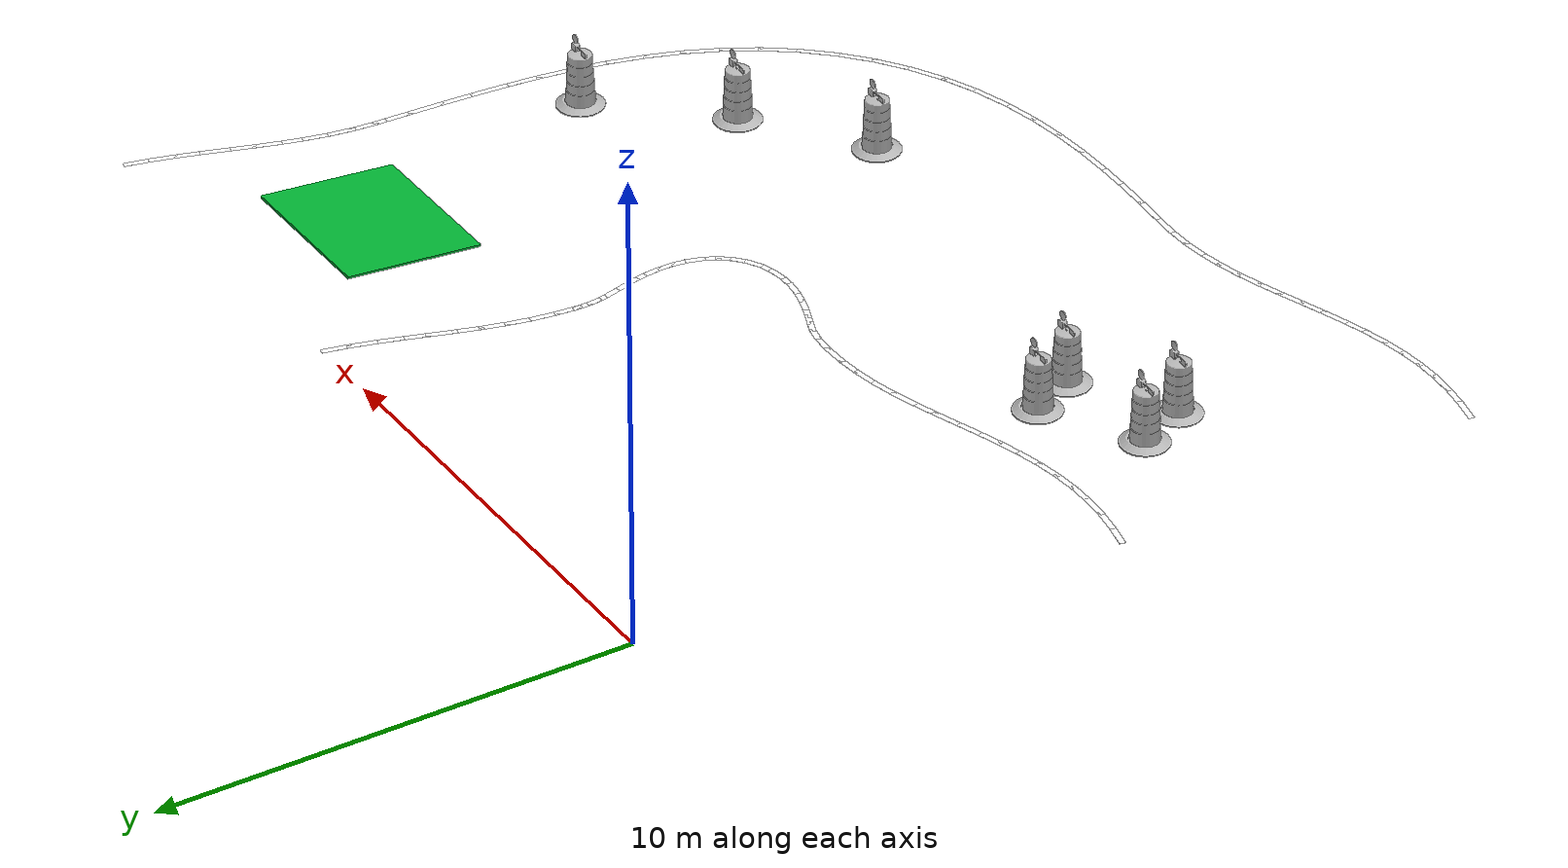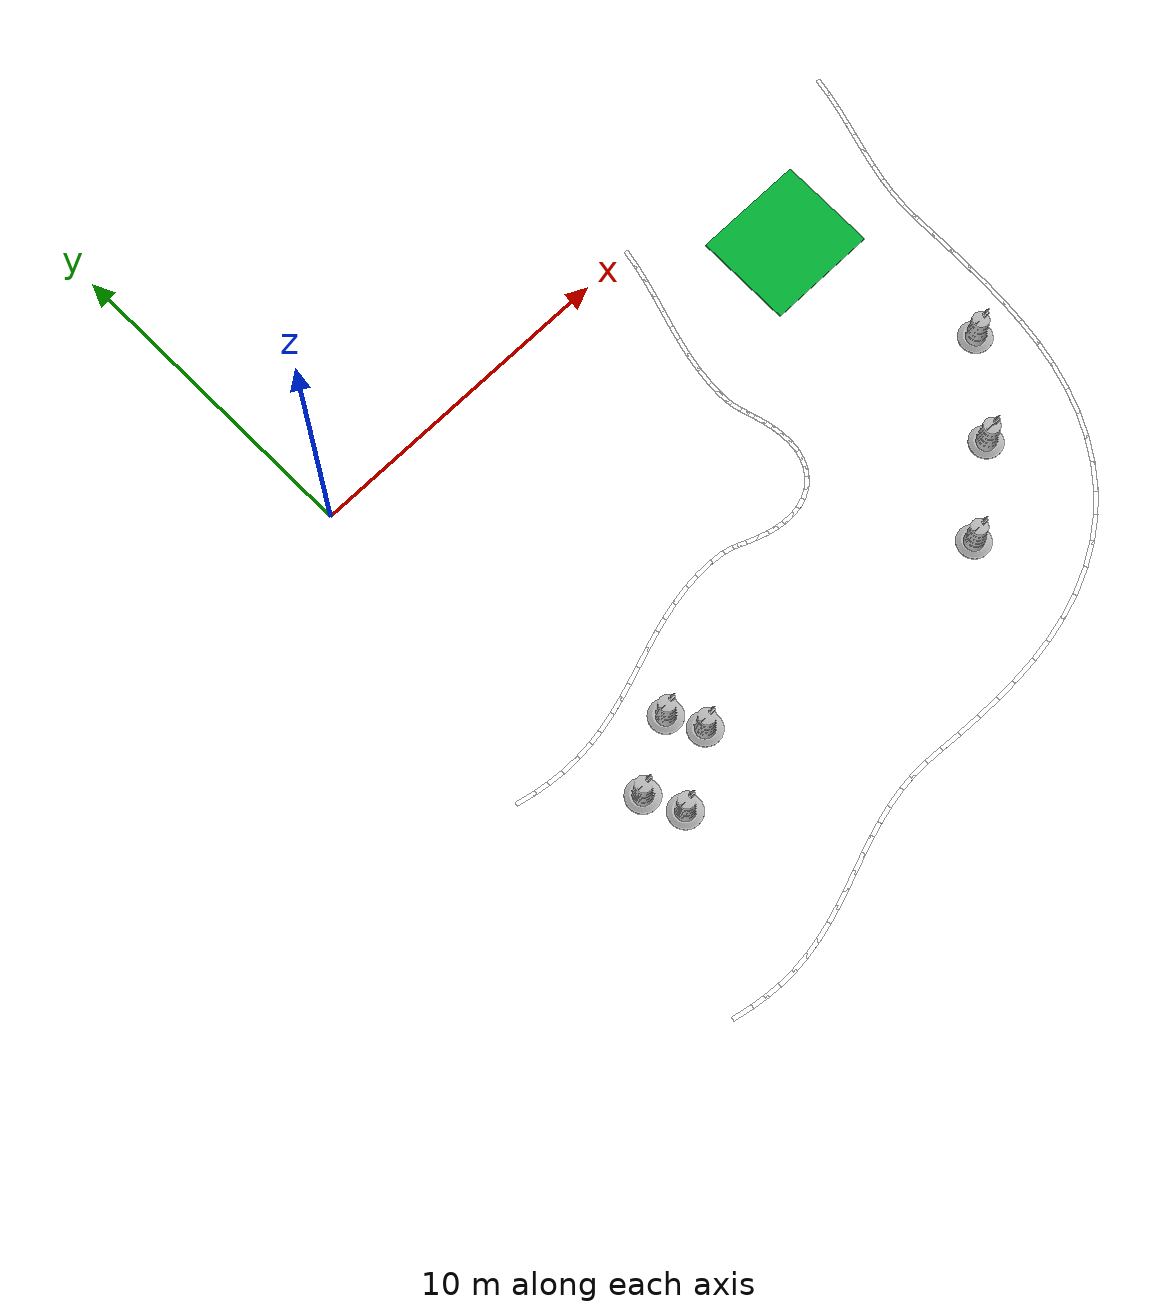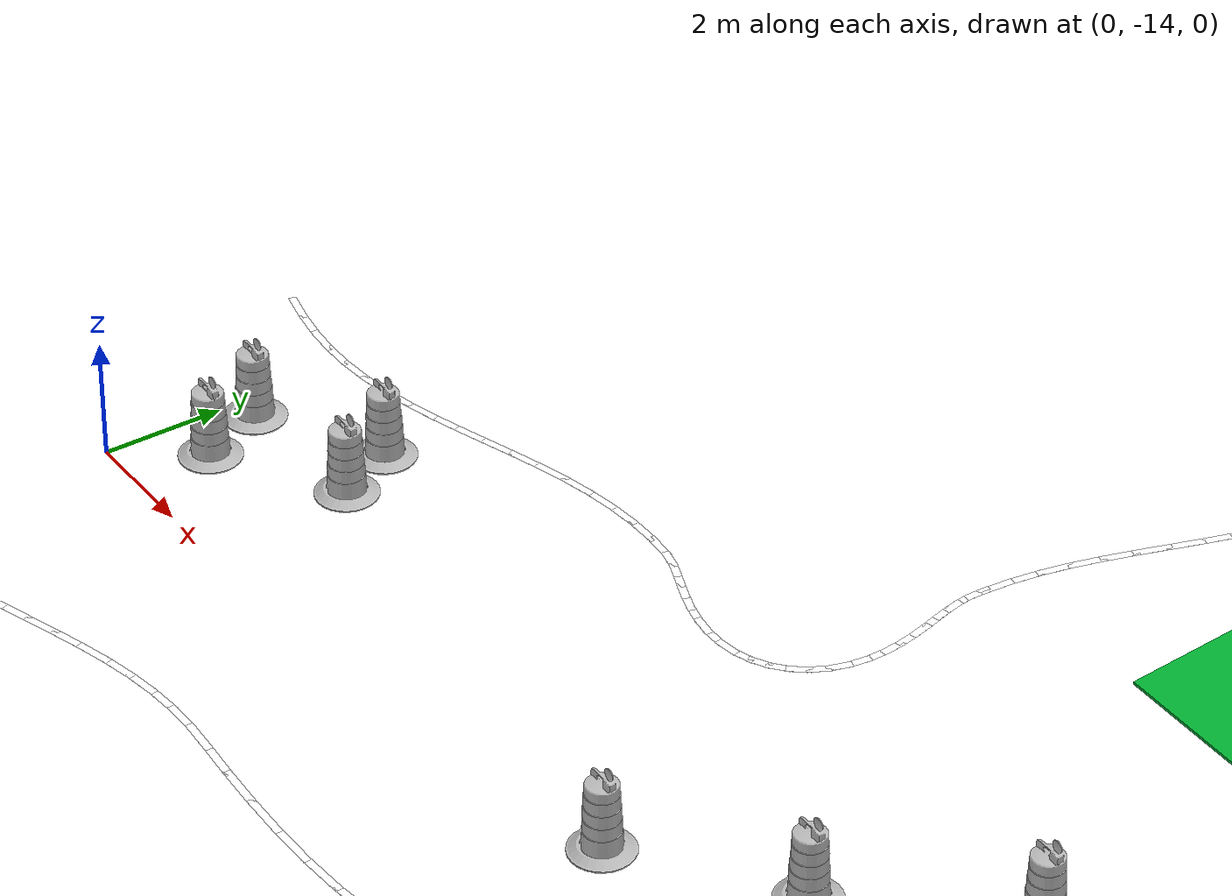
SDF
<sdf version="1.6">
 <model name="orange_igvc">
  <static>true</static>
  <link name="construction_barrel7">
   <pose>14.52 -11.21 0.05 0 0 0</pose>
   <visual name="visual">
    <geometry><mesh><uri>model://construction_barrel/meshes/construction_barrel.dae</uri></mesh></geometry>
   </visual>
   <collision name="collision">
    <geometry><mesh><uri>model://construction_barrel/meshes/construction_barrel.dae</uri></mesh></geometry>
   </collision>
  </link>
  <link name="construction_barrel16">
   <pose>1.00 -12.74 0.05 0 0 0</pose>
   <visual name="visual">
    <geometry><mesh><uri>model://construction_barrel/meshes/construction_barrel.dae</uri></mesh></geometry>
   </visual>
   <collision name="collision">
    <geometry><mesh><uri>model://construction_barrel/meshes/construction_barrel.dae</uri></mesh></geometry>
   </collision>
  </link>
  <link name="construction_barrel27">
   <pose>12.08 -12.97 0.05 0 0 0</pose>
   <visual name="visual">
    <geometry><mesh><uri>model://construction_barrel/meshes/construction_barrel.dae</uri></mesh></geometry>
   </visual>
   <collision name="collision">
    <geometry><mesh><uri>model://construction_barrel/meshes/construction_barrel.dae</uri></mesh></geometry>
   </collision>
  </link>
  <link name="construction_barrel28">
   <pose>3.00 -11.52 0.05 0 0 0</pose>
   <visual name="visual">
    <geometry><mesh><uri>model://construction_barrel/meshes/construction_barrel.dae</uri></mesh></geometry>
   </visual>
   <collision name="collision">
    <geometry><mesh><uri>model://construction_barrel/meshes/construction_barrel.dae</uri></mesh></geometry>
   </collision>
  </link>
  <link name="construction_barrel29">
   <pose>16.69 -8.83 0.05 0 0 0</pose>
   <visual name="visual">
    <geometry><mesh><uri>model://construction_barrel/meshes/construction_barrel.dae</uri></mesh></geometry>
   </visual>
   <collision name="collision">
    <geometry><mesh><uri>model://construction_barrel/meshes/construction_barrel.dae</uri></mesh></geometry>
   </collision>
  </link>
  <link name="construction_barrel32">
   <pose>2.50 -10.53 0.05 0 0 0</pose>
   <visual name="visual">
    <geometry><mesh><uri>model://construction_barrel/meshes/construction_barrel.dae</uri></mesh></geometry>
   </visual>
   <collision name="collision">
    <geometry><mesh><uri>model://construction_barrel/meshes/construction_barrel.dae</uri></mesh></geometry>
   </collision>
  </link>
  <link name="construction_barrel34">
   <pose>0.50 -11.65 0.05 0 0 0</pose>
   <visual name="visual">
    <geometry><mesh><uri>model://construction_barrel/meshes/construction_barrel.dae</uri></mesh></geometry>
   </visual>
   <collision name="collision">
    <geometry><mesh><uri>model://construction_barrel/meshes/construction_barrel.dae</uri></mesh></geometry>
   </collision>
  </link>
  <link name="white_line_inner_16">
   <pose>-1.7499999999999998 -9.515595451771496 0.005 0 0 -0.22200477363032112</pose>
   <visual name="visual">
    <geometry><box><size>0.6125797383418122 0.127 0.001</size></box></geometry>
    <material><ambient>1.0 1.0 1.0 1.0</ambient><diffuse>1.0 1.0 1.0 1.0</diffuse></material>
   </visual>
  </link>
  <link name="white_line_inner_17">
   <pose>-1.2499999999999998 -9.611917648340349 0.005 0 0 -0.15822952551615452</pose>
   <visual name="visual">
    <geometry><box><size>0.6063251121473052 0.127 0.001</size></box></geometry>
    <material><ambient>1.0 1.0 1.0 1.0</ambient><diffuse>1.0 1.0 1.0 1.0</diffuse></material>
   </visual>
  </link>
  <link name="white_line_inner_18">
   <pose>-0.7499999999999998 -9.672851910128855 0.005 0 0 -0.08397569799048121</pose>
   <visual name="visual">
    <geometry><box><size>0.6017681745223847 0.127 0.001</size></box></geometry>
    <material><ambient>1.0 1.0 1.0 1.0</ambient><diffuse>1.0 1.0 1.0 1.0</diffuse></material>
   </visual>
  </link>
  <link name="white_line_inner_19">
   <pose>-0.24999999999999978 -9.694874335370326 0.005 0 0 -0.003916027979200692</pose>
   <visual name="visual">
    <geometry><box><size>0.6000038338432806 0.127 0.001</size></box></geometry>
    <material><ambient>1.0 1.0 1.0 1.0</ambient><diffuse>1.0 1.0 1.0 1.0</diffuse></material>
   </visual>
  </link>
  <link name="white_line_inner_20">
   <pose>0.2500000000000002 -9.676711340682637 0.005 0 0 0.07641892005618513</pose>
   <visual name="visual">
    <geometry><box><size>0.6014635237781663 0.127 0.001</size></box></geometry>
    <material><ambient>1.0 1.0 1.0 1.0</ambient><diffuse>1.0 1.0 1.0 1.0</diffuse></material>
   </visual>
  </link>
  <link name="white_line_inner_21">
   <pose>0.7500000000000002 -9.619413313929527 0.005 0 0 0.15145529211583023</pose>
   <visual name="visual">
    <geometry><box><size>0.6057900033305827 0.127 0.001</size></box></geometry>
    <material><ambient>1.0 1.0 1.0 1.0</ambient><diffuse>1.0 1.0 1.0 1.0</diffuse></material>
   </visual>
  </link>
  <link name="white_line_inner_22">
   <pose>1.2500000000000002 -9.526293869025032 0.005 0 0 0.21641075410120117</pose>
   <visual name="visual">
    <geometry><box><size>0.61194131722283 0.127 0.001</size></box></geometry>
    <material><ambient>1.0 1.0 1.0 1.0</ambient><diffuse>1.0 1.0 1.0 1.0</diffuse></material>
   </visual>
  </link>
  <link name="white_line_inner_23">
   <pose>1.7500000000000004 -9.402738215648913 0.005 0 0 0.2677794008033291</pose>
   <visual name="visual">
    <geometry><box><size>0.6184781338331515 0.127 0.001</size></box></geometry>
    <material><ambient>1.0 1.0 1.0 1.0</ambient><diffuse>1.0 1.0 1.0 1.0</diffuse></material>
   </visual>
  </link>
  <link name="white_line_inner_24">
   <pose>2.2500000000000004 -9.255891726083332 0.005 0 0 0.3033558427576608</pose>
   <visual name="visual">
    <geometry><box><size>0.6239226254668137 0.127 0.001</size></box></geometry>
    <material><ambient>1.0 1.0 1.0 1.0</ambient><diffuse>1.0 1.0 1.0 1.0</diffuse></material>
   </visual>
  </link>
  <link name="white_line_inner_25">
   <pose>2.7500000000000004 -9.094246709725745 0.005 0 0 0.3219572593375773</pose>
   <visual name="visual">
    <geometry><box><size>0.6270826048143481 0.127 0.001</size></box></geometry>
    <material><ambient>1.0 1.0 1.0 1.0</ambient><diffuse>1.0 1.0 1.0 1.0</diffuse></material>
   </visual>
  </link>
  <link name="white_line_inner_26">
   <pose>3.2500000000000004 -8.927151292605764 0.005 0 0 0.32308674064906595</pose>
   <visual name="visual">
    <geometry><box><size>0.6272815961340339 0.127 0.001</size></box></geometry>
    <material><ambient>1.0 1.0 1.0 1.0</ambient><diffuse>1.0 1.0 1.0 1.0</diffuse></material>
   </visual>
  </link>
  <link name="white_line_inner_27">
   <pose>3.75 -8.764268803995186 0.005 0 0 0.30671689101200544</pose>
   <visual name="visual">
    <geometry><box><size>0.6244773713326279 0.127 0.001</size></box></geometry>
    <material><ambient>1.0 1.0 1.0 1.0</ambient><diffuse>1.0 1.0 1.0 1.0</diffuse></material>
   </visual>
  </link>
  <link name="white_line_inner_28">
   <pose>4.25 -8.615018934434795 0.005 0 0 0.2732759039336813</pose>
   <visual name="visual">
    <geometry><box><size>0.619269067724084 0.127 0.001</size></box></geometry>
    <material><ambient>1.0 1.0 1.0 1.0</ambient><diffuse>1.0 1.0 1.0 1.0</diffuse></material>
   </visual>
  </link>
  <link name="white_line_inner_29">
   <pose>4.75 -8.488032983682496 0.005 0 0 0.22384066905656302</pose>
   <visual name="visual">
    <geometry><box><size>0.6127931080864082 0.127 0.001</size></box></geometry>
    <material><ambient>1.0 1.0 1.0 1.0</ambient><diffuse>1.0 1.0 1.0 1.0</diffuse></material>
   </visual>
  </link>
  <link name="white_line_inner_30">
   <pose>5.25 -8.390654702250194 0.005 0 0 0.16046586431314974</pose>
   <visual name="visual">
    <geometry><box><size>0.6065071194614166 0.127 0.001</size></box></geometry>
    <material><ambient>1.0 1.0 1.0 1.0</ambient><diffuse>1.0 1.0 1.0 1.0</diffuse></material>
   </visual>
  </link>
  <link name="white_line_inner_31">
   <pose>5.75 -8.328515593464672 0.005 0 0 0.08648268578142763</pose>
   <visual name="visual">
    <geometry><box><size>0.6018756585177814 0.127 0.001</size></box></geometry>
    <material><ambient>1.0 1.0 1.0 1.0</ambient><diffuse>1.0 1.0 1.0 1.0</diffuse></material>
   </visual>
  </link>
  <link name="white_line_inner_32">
   <pose>6.25 -8.305209236845947 0.005 0 0 0.006526392350070796</pose>
   <visual name="visual">
    <geometry><box><size>0.6000106486382625 0.127 0.001</size></box></geometry>
    <material><ambient>1.0 1.0 1.0 1.0</ambient><diffuse>1.0 1.0 1.0 1.0</diffuse></material>
   </visual>
  </link>
  <link name="white_line_inner_33">
   <pose>6.713602797569356 -8.322367802858976 0.005 0 0 -0.08774202836432715</pose>
   <visual name="visual">
    <geometry><box><size>0.528855342822992 0.127 0.001</size></box></geometry>
    <material><ambient>1.0 1.0 1.0 1.0</ambient><diffuse>1.0 1.0 1.0 1.0</diffuse></material>
   </visual>
  </link>
  <link name="white_line_inner_34">
   <pose>7.070274580948903 -8.375104621368079 0.005 0 0 -0.23296639095407004</pose>
   <visual name="visual">
    <geometry><box><size>0.3940823590322541 0.127 0.001</size></box></geometry>
    <material><ambient>1.0 1.0 1.0 1.0</ambient><diffuse>1.0 1.0 1.0 1.0</diffuse></material>
   </visual>
  </link>
  <link name="white_line_inner_35">
   <pose>7.326387945486001 -8.453090532564458 0.005 0 0 -0.3714872529362892</pose>
   <visual name="visual">
    <geometry><box><size>0.34263956594569395 0.127 0.001</size></box></geometry>
    <material><ambient>1.0 1.0 1.0 1.0</ambient><diffuse>1.0 1.0 1.0 1.0</diffuse></material>
   </visual>
  </link>
  <link name="white_line_inner_36">
   <pose>7.560929465551547 -8.546993209474403 0.005 0 0 -0.38944645332879746</pose>
   <visual name="visual">
    <geometry><box><size>0.3626626255065092 0.127 0.001</size></box></geometry>
    <material><ambient>1.0 1.0 1.0 1.0</ambient><diffuse>1.0 1.0 1.0 1.0</diffuse></material>
   </visual>
  </link>
  <link name="white_line_inner_37">
   <pose>7.813385168364517 -8.647603176896608 0.005 0 0 -0.3696851378994386</pose>
   <visual name="visual">
    <geometry><box><size>0.38089399593061235 0.127 0.001</size></box></geometry>
    <material><ambient>1.0 1.0 1.0 1.0</ambient><diffuse>1.0 1.0 1.0 1.0</diffuse></material>
   </visual>
  </link>
  <link name="white_line_inner_38">
   <pose>8.084524762918294 -8.744498208252494 0.005 0 0 -0.3180315190521233</pose>
   <visual name="visual">
    <geometry><box><size>0.3951637001919053 0.127 0.001</size></box></geometry>
    <material><ambient>1.0 1.0 1.0 1.0</ambient><diffuse>1.0 1.0 1.0 1.0</diffuse></material>
   </visual>
  </link>
  <link name="white_line_inner_39">
   <pose>8.372569318847004 -8.826637090662196 0.005 0 0 -0.23876012683329692</pose>
   <visual name="visual">
    <geometry><box><size>0.4043611790656285 0.127 0.001</size></box></geometry>
    <material><ambient>1.0 1.0 1.0 1.0</ambient><diffuse>1.0 1.0 1.0 1.0</diffuse></material>
   </visual>
  </link>
  <link name="white_line_inner_40">
   <pose>8.67321319559155 -8.883287597967652 0.005 0 0 -0.13441202375985797</pose>
   <visual name="visual">
    <geometry><box><size>0.40834186015554597 0.127 0.001</size></box></geometry>
    <material><ambient>1.0 1.0 1.0 1.0</ambient><diffuse>1.0 1.0 1.0 1.0</diffuse></material>
   </visual>
  </link>
  <link name="white_line_inner_41">
   <pose>8.979897585412594 -8.904922676091743 0.005 0 0 -0.006334981987636422</pose>
   <visual name="visual">
    <geometry><box><size>0.40781424843108094 0.127 0.001</size></box></geometry>
    <material><ambient>1.0 1.0 1.0 1.0</ambient><diffuse>1.0 1.0 1.0 1.0</diffuse></material>
   </visual>
  </link>
  <link name="white_line_inner_42">
   <pose>9.284312214195573 -8.884006342436358 0.005 0 0 0.14443426598271122</pose>
   <visual name="visual">
    <geometry><box><size>0.40418855150048394 0.127 0.001</size></box></geometry>
    <material><ambient>1.0 1.0 1.0 1.0</ambient><diffuse>1.0 1.0 1.0 1.0</diffuse></material>
   </visual>
  </link>
  <link name="white_line_inner_43">
   <pose>9.57708023074688 -8.81560102707131 0.005 0 0 0.31601316877776137</pose>
   <visual name="visual">
    <geometry><box><size>0.399337440380077 0.127 0.001</size></box></geometry>
    <material><ambient>1.0 1.0 1.0 1.0</ambient><diffuse>1.0 1.0 1.0 1.0</diffuse></material>
   </visual>
  </link>
  <link name="white_line_inner_44">
   <pose>9.848563893362147 -8.697744434037627 0.005 0 0 0.5044350700850666</pose>
   <visual name="visual">
    <geometry><box><size>0.3952232234972307 0.127 0.001</size></box></geometry>
    <material><ambient>1.0 1.0 1.0 1.0</ambient><diffuse>1.0 1.0 1.0 1.0</diffuse></material>
   </visual>
  </link>
  <link name="white_line_inner_45">
   <pose>10.089716945818619 -8.531564980002893 0.005 0 0 0.7029310446080024</pose>
   <visual name="visual">
    <geometry><box><size>0.39340511090800945 0.127 0.001</size></box></geometry>
    <material><ambient>1.0 1.0 1.0 1.0</ambient><diffuse>1.0 1.0 1.0 1.0</diffuse></material>
   </visual>
  </link>
  <link name="white_line_inner_46">
   <pose>10.292904655897736 -8.321128559229068 0.005 0 0 0.9025171515997361</pose>
   <visual name="visual">
    <geometry><box><size>0.39456280766559426 0.127 0.001</size></box></geometry>
    <material><ambient>1.0 1.0 1.0 1.0</ambient><diffuse>1.0 1.0 1.0 1.0</diffuse></material>
   </visual>
  </link>
  <link name="white_line_inner_47">
   <pose>10.45261483817853 -8.073033628506137 0.005 0 0 1.0939440778384744</pose>
   <visual name="visual">
    <geometry><box><size>0.39826381091005314 0.127 0.001</size></box></geometry>
    <material><ambient>1.0 1.0 1.0 1.0</ambient><diffuse>1.0 1.0 1.0 1.0</diffuse></material>
   </visual>
  </link>
  <link name="white_line_inner_48">
   <pose>10.565992603431955 -7.795794196488471 0.005 0 0 1.269826274098808</pose>
   <visual name="visual">
    <geometry><box><size>0.4031132762702515 0.127 0.001</size></box></geometry>
    <material><ambient>1.0 1.0 1.0 1.0</ambient><diffuse>1.0 1.0 1.0 1.0</diffuse></material>
   </visual>
  </link>
  <link name="white_line_inner_49">
   <pose>10.633147225235652 -7.499069186280924 0.005 0 0 1.4255827557891851</pose>
   <visual name="visual">
    <geometry><box><size>0.4071950980845763 0.127 0.001</size></box></geometry>
    <material><ambient>1.0 1.0 1.0 1.0</ambient><diffuse>1.0 1.0 1.0 1.0</diffuse></material>
   </visual>
  </link>
  <link name="white_line_inner_50">
   <pose>10.65719997427605 -7.192810107342222 0.005 0 0 1.5589571809187206</pose>
   <visual name="visual">
    <geometry><box><size>0.40857790657088366 0.127 0.001</size></box></geometry>
    <material><ambient>1.0 1.0 1.0 1.0</ambient><diffuse>1.0 1.0 1.0 1.0</diffuse></material>
   </visual>
  </link>
  <link name="white_line_inner_51">
   <pose>10.644065183192836 -6.886405809549369 0.005 0 0 1.668829684925054</pose>
   <visual name="visual">
    <geometry><box><size>0.4057202065945007 0.127 0.001</size></box></geometry>
    <material><ambient>1.0 1.0 1.0 1.0</ambient><diffuse>1.0 1.0 1.0 1.0</diffuse></material>
   </visual>
  </link>
  <link name="white_line_inner_52">
   <pose>10.601981037447365 -6.58790269325341 0.005 0 0 1.7540121882795812</pose>
   <visual name="visual">
    <geometry><box><size>0.3977371831655304 0.127 0.001</size></box></geometry>
    <material><ambient>1.0 1.0 1.0 1.0</ambient><diffuse>1.0 1.0 1.0 1.0</diffuse></material>
   </visual>
  </link>
  <link name="white_line_inner_53">
   <pose>10.540829429660025 -6.303371171637295 0.005 0 0 1.8122991099185481</pose>
   <visual name="visual">
    <geometry><box><size>0.38456736633359334 0.127 0.001</size></box></geometry>
    <material><ambient>1.0 1.0 1.0 1.0</ambient><diffuse>1.0 1.0 1.0 1.0</diffuse></material>
   </visual>
  </link>
  <link name="white_line_inner_54">
   <pose>10.471303578644985 -6.036475139675035 0.005 0 0 1.8398346312758265</pose>
   <visual name="visual">
    <geometry><box><size>0.36709101288688406 0.127 0.001</size></box></geometry>
    <material><ambient>1.0 1.0 1.0 1.0</ambient><diffuse>1.0 1.0 1.0 1.0</diffuse></material>
   </visual>
  </link>
  <link name="white_line_inner_55">
   <pose>10.403996226665633 -5.788282002281679 0.005 0 0 1.8310593468817775</pose>
   <visual name="visual">
    <geometry><box><size>0.3472294486733758 0.127 0.001</size></box></geometry>
    <material><ambient>1.0 1.0 1.0 1.0</ambient><diffuse>1.0 1.0 1.0 1.0</diffuse></material>
   </visual>
  </link>
  <link name="white_line_inner_56">
   <pose>10.348488792359472 -5.557328228454702 0.005 0 0 1.7802063984521825</pose>
   <visual name="visual">
    <geometry><box><size>0.32798483167551684 0.127 0.001</size></box></geometry>
    <material><ambient>1.0 1.0 1.0 1.0</ambient><diffuse>1.0 1.0 1.0 1.0</diffuse></material>
   </visual>
  </link>
  <link name="white_line_inner_57">
   <pose>10.312522170661211 -5.339931511811692 0.005 0 0 1.6861476234922936</pose>
   <visual name="visual">
    <geometry><box><size>0.3132061015872908 0.127 0.001</size></box></geometry>
    <material><ambient>1.0 1.0 1.0 1.0</ambient><diffuse>1.0 1.0 1.0 1.0</diffuse></material>
   </visual>
  </link>
  <link name="white_line_inner_58">
   <pose>10.302713433660536 -5.067079423313391 0.005 0 0 1.5560582444073343</pose>
   <visual name="visual">
    <geometry><box><size>0.43395122342600234 0.127 0.001</size></box></geometry>
    <material><ambient>1.0 1.0 1.0 1.0</ambient><diffuse>1.0 1.0 1.0 1.0</diffuse></material>
   </visual>
  </link>
  <link name="white_line_inner_59">
   <pose>10.30496616651045 -4.94891978525604 0.005 0 0 -1.575060391045429</pose>
   <visual name="visual">
    <geometry><box><size>0.19759656627704436 0.127 0.001</size></box></geometry>
    <material><ambient>1.0 1.0 1.0 1.0</ambient><diffuse>1.0 1.0 1.0 1.0</diffuse></material>
   </visual>
  </link>
  <link name="white_line_inner_60">
   <pose>10.324534821585214 -4.7488588123820445 0.005 0 0 1.4914932977124151</pose>
   <visual name="visual">
    <geometry><box><size>0.599286802094762 0.127 0.001</size></box></geometry>
    <material><ambient>1.0 1.0 1.0 1.0</ambient><diffuse>1.0 1.0 1.0 1.0</diffuse></material>
   </visual>
  </link>
  <link name="white_line_inner_61">
   <pose>10.383048192210342 -4.249999999999999 0.005 0 0 1.417072224392432</pose>
   <visual name="visual">
    <geometry><box><size>0.6059665090060949 0.127 0.001</size></box></geometry>
    <material><ambient>1.0 1.0 1.0 1.0</ambient><diffuse>1.0 1.0 1.0 1.0</diffuse></material>
   </visual>
  </link>
  <link name="white_line_inner_62">
   <pose>10.477240906489255 -3.7499999999999996 0.005 0 0 1.3525066012752496</pose>
   <visual name="visual">
    <geometry><box><size>0.6121537913116326 0.127 0.001</size></box></geometry>
    <material><ambient>1.0 1.0 1.0 1.0</ambient><diffuse>1.0 1.0 1.0 1.0</diffuse></material>
   </visual>
  </link>
  <link name="white_line_inner_63">
   <pose>10.601665408913458 -3.2499999999999996 0.005 0 0 1.301618024374916</pose>
   <visual name="visual">
    <geometry><box><size>0.6186777176241935 0.127 0.001</size></box></geometry>
    <material><ambient>1.0 1.0 1.0 1.0</ambient><diffuse>1.0 1.0 1.0 1.0</diffuse></material>
   </visual>
  </link>
  <link name="white_line_inner_64">
   <pose>10.749126080613635 -2.7499999999999996 0.005 0 0 1.2665737257907626</pose>
   <visual name="visual">
    <geometry><box><size>0.6240650064376606 0.127 0.001</size></box></geometry>
    <material><ambient>1.0 1.0 1.0 1.0</ambient><diffuse>1.0 1.0 1.0 1.0</diffuse></material>
   </visual>
  </link>
  <link name="white_line_inner_65">
   <pose>10.911095093299586 -2.2499999999999996 0.005 0 0 1.2485295026337353</pose>
   <visual name="visual">
    <geometry><box><size>0.6271370619164055 0.127 0.001</size></box></geometry>
    <material><ambient>1.0 1.0 1.0 1.0</ambient><diffuse>1.0 1.0 1.0 1.0</diffuse></material>
   </visual>
  </link>
  <link name="white_line_inner_66">
   <pose>11.07820558384371 -1.7499999999999996 0.005 0 0 1.2479647552044617</pose>
   <visual name="visual">
    <geometry><box><size>0.6272365686535132 0.127 0.001</size></box></geometry>
    <material><ambient>1.0 1.0 1.0 1.0</ambient><diffuse>1.0 1.0 1.0 1.0</diffuse></material>
   </visual>
  </link>
  <link name="white_line_inner_67">
   <pose>11.240793351259931 -1.2499999999999996 0.005 0 0 1.2648931776499714</pose>
   <visual name="visual">
    <geometry><box><size>0.6243424107691669 0.127 0.001</size></box></geometry>
    <material><ambient>1.0 1.0 1.0 1.0</ambient><diffuse>1.0 1.0 1.0 1.0</diffuse></material>
   </visual>
  </link>
  <link name="white_line_inner_68">
   <pose>11.389455749089185 -0.7499999999999996 0.005 0 0 1.2988697215985485</pose>
   <visual name="visual">
    <geometry><box><size>0.6190732307078657 0.127 0.001</size></box></geometry>
    <material><ambient>1.0 1.0 1.0 1.0</ambient><diffuse>1.0 1.0 1.0 1.0</diffuse></material>
   </visual>
  </link>
  <link name="white_line_inner_69">
   <pose>11.515595451771507 -0.24999999999999956 0.005 0 0 1.3487915531645822</pose>
   <visual name="visual">
    <geometry><box><size>0.6125797383418115 0.127 0.001</size></box></geometry>
    <material><ambient>1.0 1.0 1.0 1.0</ambient><diffuse>1.0 1.0 1.0 1.0</diffuse></material>
   </visual>
  </link>
  <link name="white_line_outer_16">
   <pose>-1.7500000000000004 -17.515595451771496 0.005 0 0 -0.22200477363031765</pose>
   <visual name="visual">
    <geometry><box><size>0.612579738341812 0.127 0.001</size></box></geometry>
    <material><ambient>1.0 1.0 1.0 1.0</ambient><diffuse>1.0 1.0 1.0 1.0</diffuse></material>
   </visual>
  </link>
  <link name="white_line_outer_17">
   <pose>-1.2500000000000002 -17.611917648340345 0.005 0 0 -0.158229525516158</pose>
   <visual name="visual">
    <geometry><box><size>0.6063251121473054 0.127 0.001</size></box></geometry>
    <material><ambient>1.0 1.0 1.0 1.0</ambient><diffuse>1.0 1.0 1.0 1.0</diffuse></material>
   </visual>
  </link>
  <link name="white_line_outer_18">
   <pose>-0.7500000000000002 -17.672851910128855 0.005 0 0 -0.0839756979904777</pose>
   <visual name="visual">
    <geometry><box><size>0.6017681745223845 0.127 0.001</size></box></geometry>
    <material><ambient>1.0 1.0 1.0 1.0</ambient><diffuse>1.0 1.0 1.0 1.0</diffuse></material>
   </visual>
  </link>
  <link name="white_line_outer_19">
   <pose>-0.25000000000000033 -17.694874335370322 0.005 0 0 -0.0039160279792042445</pose>
   <visual name="visual">
    <geometry><box><size>0.6000038338432806 0.127 0.001</size></box></geometry>
    <material><ambient>1.0 1.0 1.0 1.0</ambient><diffuse>1.0 1.0 1.0 1.0</diffuse></material>
   </visual>
  </link>
  <link name="white_line_outer_20">
   <pose>0.24999999999999972 -17.676711340682637 0.005 0 0 0.07641892005618867</pose>
   <visual name="visual">
    <geometry><box><size>0.6014635237781664 0.127 0.001</size></box></geometry>
    <material><ambient>1.0 1.0 1.0 1.0</ambient><diffuse>1.0 1.0 1.0 1.0</diffuse></material>
   </visual>
  </link>
  <link name="white_line_outer_21">
   <pose>0.7499999999999997 -17.619413313929527 0.005 0 0 0.15145529211582678</pose>
   <visual name="visual">
    <geometry><box><size>0.6057900033305824 0.127 0.001</size></box></geometry>
    <material><ambient>1.0 1.0 1.0 1.0</ambient><diffuse>1.0 1.0 1.0 1.0</diffuse></material>
   </visual>
  </link>
  <link name="white_line_outer_22">
   <pose>1.2499999999999998 -17.526293869025032 0.005 0 0 0.21641075410120114</pose>
   <visual name="visual">
    <geometry><box><size>0.6119413172228301 0.127 0.001</size></box></geometry>
    <material><ambient>1.0 1.0 1.0 1.0</ambient><diffuse>1.0 1.0 1.0 1.0</diffuse></material>
   </visual>
  </link>
  <link name="white_line_outer_23">
   <pose>1.7499999999999998 -17.402738215648913 0.005 0 0 0.26777940080332924</pose>
   <visual name="visual">
    <geometry><box><size>0.6184781338331513 0.127 0.001</size></box></geometry>
    <material><ambient>1.0 1.0 1.0 1.0</ambient><diffuse>1.0 1.0 1.0 1.0</diffuse></material>
   </visual>
  </link>
  <link name="white_line_outer_24">
   <pose>2.2499999999999996 -17.255891726083334 0.005 0 0 0.303355842757661</pose>
   <visual name="visual">
    <geometry><box><size>0.6239226254668134 0.127 0.001</size></box></geometry>
    <material><ambient>1.0 1.0 1.0 1.0</ambient><diffuse>1.0 1.0 1.0 1.0</diffuse></material>
   </visual>
  </link>
  <link name="white_line_outer_25">
   <pose>2.7499999999999996 -17.094246709725745 0.005 0 0 0.3219572593375773</pose>
   <visual name="visual">
    <geometry><box><size>0.6270826048143481 0.127 0.001</size></box></geometry>
    <material><ambient>1.0 1.0 1.0 1.0</ambient><diffuse>1.0 1.0 1.0 1.0</diffuse></material>
   </visual>
  </link>
  <link name="white_line_outer_26">
   <pose>3.2499999999999996 -16.927151292605764 0.005 0 0 0.32308674064906595</pose>
   <visual name="visual">
    <geometry><box><size>0.6272815961340339 0.127 0.001</size></box></geometry>
    <material><ambient>1.0 1.0 1.0 1.0</ambient><diffuse>1.0 1.0 1.0 1.0</diffuse></material>
   </visual>
  </link>
  <link name="white_line_outer_27">
   <pose>3.7499999999999996 -16.764268803995186 0.005 0 0 0.30671689101200517</pose>
   <visual name="visual">
    <geometry><box><size>0.6244773713326284 0.127 0.001</size></box></geometry>
    <material><ambient>1.0 1.0 1.0 1.0</ambient><diffuse>1.0 1.0 1.0 1.0</diffuse></material>
   </visual>
  </link>
  <link name="white_line_outer_28">
   <pose>4.25 -16.615018934434794 0.005 0 0 0.27327590393368106</pose>
   <visual name="visual">
    <geometry><box><size>0.6192690677240844 0.127 0.001</size></box></geometry>
    <material><ambient>1.0 1.0 1.0 1.0</ambient><diffuse>1.0 1.0 1.0 1.0</diffuse></material>
   </visual>
  </link>
  <link name="white_line_outer_29">
   <pose>4.75 -16.488032983682494 0.005 0 0 0.22384066905656302</pose>
   <visual name="visual">
    <geometry><box><size>0.6127931080864082 0.127 0.001</size></box></geometry>
    <material><ambient>1.0 1.0 1.0 1.0</ambient><diffuse>1.0 1.0 1.0 1.0</diffuse></material>
   </visual>
  </link>
  <link name="white_line_outer_30">
   <pose>5.25 -16.390654702250195 0.005 0 0 0.16046586431314974</pose>
   <visual name="visual">
    <geometry><box><size>0.6065071194614166 0.127 0.001</size></box></geometry>
    <material><ambient>1.0 1.0 1.0 1.0</ambient><diffuse>1.0 1.0 1.0 1.0</diffuse></material>
   </visual>
  </link>
  <link name="white_line_outer_31">
   <pose>5.75 -16.328515593464672 0.005 0 0 0.08648268578142763</pose>
   <visual name="visual">
    <geometry><box><size>0.6018756585177814 0.127 0.001</size></box></geometry>
    <material><ambient>1.0 1.0 1.0 1.0</ambient><diffuse>1.0 1.0 1.0 1.0</diffuse></material>
   </visual>
  </link>
  <link name="white_line_outer_32">
   <pose>6.25 -16.305209236845947 0.005 0 0 0.006526392350070796</pose>
   <visual name="visual">
    <geometry><box><size>0.6000106486382625 0.127 0.001</size></box></geometry>
    <material><ambient>1.0 1.0 1.0 1.0</ambient><diffuse>1.0 1.0 1.0 1.0</diffuse></material>
   </visual>
  </link>
  <link name="white_line_outer_33">
   <pose>6.776095168247213 -16.32187961101845 0.005 0 0 -0.06619188046698604</pose>
   <visual name="visual">
    <geometry><box><size>0.6534022224965141 0.127 0.001</size></box></geometry>
    <material><ambient>1.0 1.0 1.0 1.0</ambient><diffuse>1.0 1.0 1.0 1.0</diffuse></material>
   </visual>
  </link>
  <link name="white_line_outer_34">
   <pose>7.382604222996278 -16.36680647232795 0.005 0 0 -0.08040661621526429</pose>
   <visual name="visual">
    <geometry><box><size>0.7629697425270244 0.127 0.001</size></box></geometry>
    <material><ambient>1.0 1.0 1.0 1.0</ambient><diffuse>1.0 1.0 1.0 1.0</diffuse></material>
   </visual>
  </link>
  <link name="white_line_outer_35">
   <pose>8.07492415039643 -16.41407124428217 0.005 0 0 -0.0569694060842566</pose>
   <visual name="visual">
    <geometry><box><size>0.8249882431082054 0.127 0.001</size></box></geometry>
    <material><ambient>1.0 1.0 1.0 1.0</ambient><diffuse>1.0 1.0 1.0 1.0</diffuse></material>
   </visual>
  </link>
  <link name="white_line_outer_36">
   <pose>8.805241586141545 -16.44567713079674 0.005 0 0 -0.02975679833721936</pose>
   <visual name="visual">
    <geometry><box><size>0.8371491262426449 0.127 0.001</size></box></geometry>
    <material><ambient>1.0 1.0 1.0 1.0</ambient><diffuse>1.0 1.0 1.0 1.0</diffuse></material>
   </visual>
  </link>
  <link name="white_line_outer_37">
   <pose>9.548614192431696 -16.453146116144207 0.005 0 0 0.00932601454802879</pose>
   <visual name="visual">
    <geometry><box><size>0.8499550361502013 0.127 0.001</size></box></geometry>
    <material><ambient>1.0 1.0 1.0 1.0</ambient><diffuse>1.0 1.0 1.0 1.0</diffuse></material>
   </visual>
  </link>
  <link name="white_line_outer_38">
   <pose>10.303894658257905 -16.426419687287765 0.005 0 0 0.061002989661547005</pose>
   <visual name="visual">
    <geometry><box><size>0.8620560132881134 0.127 0.001</size></box></geometry>
    <material><ambient>1.0 1.0 1.0 1.0</ambient><diffuse>1.0 1.0 1.0 1.0</diffuse></material>
   </visual>
  </link>
  <link name="white_line_outer_39">
   <pose>11.067413493512712 -16.35493937050414 0.005 0 0 0.12525660662984214</pose>
   <visual name="visual">
    <geometry><box><size>0.8724508178337483 0.127 0.001</size></box></geometry>
    <material><ambient>1.0 1.0 1.0 1.0</ambient><diffuse>1.0 1.0 1.0 1.0</diffuse></material>
   </visual>
  </link>
  <link name="white_line_outer_40">
   <pose>11.83300834075149 -16.228572819320654 0.005 0 0 0.20150744428172992</pose>
   <visual name="visual">
    <geometry><box><size>0.8805849021132776 0.127 0.001</size></box></geometry>
    <material><ambient>1.0 1.0 1.0 1.0</ambient><diffuse>1.0 1.0 1.0 1.0</diffuse></material>
   </visual>
  </link>
  <link name="white_line_outer_41">
   <pose>12.592304768645159 -16.03850765735698 0.005 0 0 0.2887262461961311</pose>
   <visual name="visual">
    <geometry><box><size>0.8863515110260682 0.127 0.001</size></box></geometry>
    <material><ambient>1.0 1.0 1.0 1.0</ambient><diffuse>1.0 1.0 1.0 1.0</diffuse></material>
   </visual>
  </link>
  <link name="white_line_outer_42">
   <pose>13.335225062756471 -15.778034586922118 0.005 0 0 0.38547996453213734</pose>
   <visual name="visual">
    <geometry><box><size>0.8900107802634593 0.127 0.001</size></box></geometry>
    <material><ambient>1.0 1.0 1.0 1.0</ambient><diffuse>1.0 1.0 1.0 1.0</diffuse></material>
   </visual>
  </link>
  <link name="white_line_outer_43">
   <pose>14.050680016652812 -15.44315150201645 0.005 0 0 0.48994337191563975</pose>
   <visual name="visual">
    <geometry><box><size>0.8920486337096282 0.127 0.001</size></box></geometry>
    <material><ambient>1.0 1.0 1.0 1.0</ambient><diffuse>1.0 1.0 1.0 1.0</diffuse></material>
   </visual>
  </link>
  <link name="white_line_outer_44">
   <pose>14.72738130518507 -15.03293669666839 0.005 0 0 0.5999187050685849</pose>
   <visual name="visual">
    <geometry><box><size>0.8930041111185685 0.127 0.001</size></box></geometry>
    <material><ambient>1.0 1.0 1.0 1.0</ambient><diffuse>1.0 1.0 1.0 1.0</diffuse></material>
   </visual>
  </link>
  <link name="white_line_outer_45">
   <pose>15.354700305973028 -14.549660240108066 0.005 0 0 0.7128995124829921</pose>
   <visual name="visual">
    <geometry><box><size>0.8933006012754516 0.127 0.001</size></box></geometry>
    <material><ambient>1.0 1.0 1.0 1.0</ambient><diffuse>1.0 1.0 1.0 1.0</diffuse></material>
   </visual>
  </link>
  <link name="white_line_outer_46">
   <pose>15.923494317033924 -13.99862628360637 0.005 0 0 0.8261931954800241</pose>
   <visual name="visual">
    <geometry><box><size>0.8931190771278572 0.127 0.001</size></box></geometry>
    <material><ambient>1.0 1.0 1.0 1.0</ambient><diffuse>1.0 1.0 1.0 1.0</diffuse></material>
   </visual>
  </link>
  <link name="white_line_outer_47">
   <pose>16.426823468165487 -13.387763310041455 0.005 0 0 0.9370869895138608</pose>
   <visual name="visual">
    <geometry><box><size>0.8923446750669519 0.127 0.001</size></box></geometry>
    <material><ambient>1.0 1.0 1.0 1.0</ambient><diffuse>1.0 1.0 1.0 1.0</diffuse></material>
   </visual>
  </link>
  <link name="white_line_outer_48">
   <pose>16.860491045418836 -12.72700192951168 0.005 0 0 1.0430189791490898</pose>
   <visual name="visual">
    <geometry><box><size>0.8906005623780198 0.127 0.001</size></box></geometry>
    <material><ambient>1.0 1.0 1.0 1.0</ambient><diffuse>1.0 1.0 1.0 1.0</diffuse></material>
   </visual>
  </link>
  <link name="white_line_outer_49">
   <pose>17.223355597510015 -12.027498710123389 0.005 0 0 1.1417129949819207</pose>
   <visual name="visual">
    <geometry><box><size>0.8873602015423133 0.127 0.001</size></box></geometry>
    <material><ambient>1.0 1.0 1.0 1.0</ambient><diffuse>1.0 1.0 1.0 1.0</diffuse></material>
   </visual>
  </link>
  <link name="white_line_outer_50">
   <pose>17.517383654175923 -11.300778001622628 0.005 0 0 1.2312556527981577</pose>
   <visual name="visual">
    <geometry><box><size>0.88210979791941 0.127 0.001</size></box></geometry>
    <material><ambient>1.0 1.0 1.0 1.0</ambient><diffuse>1.0 1.0 1.0 1.0</diffuse></material>
   </visual>
  </link>
  <link name="white_line_outer_51">
   <pose>17.7474353002575 -10.557870547551886 0.005 0 0 1.3101234875740346</pose>
   <visual name="visual">
    <geometry><box><size>0.8745234125219349 0.127 0.001</size></box></geometry>
    <material><ambient>1.0 1.0 1.0 1.0</ambient><diffuse>1.0 1.0 1.0 1.0</diffuse></material>
   </visual>
  </link>
  <link name="white_line_outer_52">
   <pose>17.920799083383216 -9.808527283746209 0.005 0 0 1.3771926148047064</pose>
   <visual name="visual">
    <geometry><box><size>0.864614086466938 0.127 0.001</size></box></geometry>
    <material><ambient>1.0 1.0 1.0 1.0</ambient><diffuse>1.0 1.0 1.0 1.0</diffuse></material>
   </visual>
  </link>
  <link name="white_line_outer_53">
   <pose>18.046515576621843 -9.060579144516499 0.005 0 0 1.4317734242280513</pose>
   <visual name="visual">
    <geometry><box><size>0.8528306805367516 0.127 0.001</size></box></geometry>
    <material><ambient>1.0 1.0 1.0 1.0</ambient><diffuse>1.0 1.0 1.0 1.0</diffuse></material>
   </visual>
  </link>
  <link name="white_line_outer_54">
   <pose>18.13454828285205 -8.31949965681135 0.005 0 0 1.4737059716927319</pose>
   <visual name="visual">
    <geometry><box><size>0.8400771456603054 0.127 0.001</size></box></geometry>
    <material><ambient>1.0 1.0 1.0 1.0</ambient><diffuse>1.0 1.0 1.0 1.0</diffuse></material>
   </visual>
  </link>
  <link name="white_line_outer_55">
   <pose>18.194874681542977 -7.58820790179287 0.005 0 0 1.5035263114983892</pose>
   <visual name="visual">
    <geometry><box><size>0.8276375594079372 0.127 0.001</size></box></geometry>
    <material><ambient>1.0 1.0 1.0 1.0</ambient><diffuse>1.0 1.0 1.0 1.0</diffuse></material>
   </visual>
  </link>
  <link name="white_line_outer_56">
   <pose>18.23657778426714 -6.867126838221958 0.005 0 0 1.5226677110285198</pose>
   <visual name="visual">
    <geometry><box><size>0.8170005764643964 0.127 0.001</size></box></geometry>
    <material><ambient>1.0 1.0 1.0 1.0</ambient><diffuse>1.0 1.0 1.0 1.0</diffuse></material>
   </visual>
  </link>
  <link name="white_line_outer_57">
   <pose>18.267018880892472 -6.15448809629382 0.005 0 0 1.5336015268724812</pose>
   <visual name="visual">
    <geometry><box><size>0.8095979553208167 0.127 0.001</size></box></geometry>
    <material><ambient>1.0 1.0 1.0 1.0</ambient><diffuse>1.0 1.0 1.0 1.0</diffuse></material>
   </visual>
  </link>
  <link name="white_line_outer_58">
   <pose>18.290187581802684 -5.491591315453418 0.005 0 0 1.5384570731903513</pose>
   <visual name="visual">
    <geometry><box><size>0.717009011857761 0.127 0.001</size></box></geometry>
    <material><ambient>1.0 1.0 1.0 1.0</ambient><diffuse>1.0 1.0 1.0 1.0</diffuse></material>
   </visual>
  </link>
  <link name="white_line_outer_59">
   <pose>18.302459895642528 -5.092427285951633 0.005 0 0 1.5455074416467858</pose>
   <visual name="visual">
    <geometry><box><size>0.28169975938888164 0.127 0.001</size></box></geometry>
    <material><ambient>1.0 1.0 1.0 1.0</ambient><diffuse>1.0 1.0 1.0 1.0</diffuse></material>
   </visual>
  </link>
  <link name="white_line_outer_60">
   <pose>18.324534348991364 -4.750803227608429 0.005 0 0 1.4921036969977322</pose>
   <visual name="visual">
    <geometry><box><size>0.6031635791988741 0.127 0.001</size></box></geometry>
    <material><ambient>1.0 1.0 1.0 1.0</ambient><diffuse>1.0 1.0 1.0 1.0</diffuse></material>
   </visual>
  </link>
  <link name="white_line_outer_61">
   <pose>18.383048192210342 -4.25 0.005 0 0 1.4170722243924356</pose>
   <visual name="visual">
    <geometry><box><size>0.605966509006095 0.127 0.001</size></box></geometry>
    <material><ambient>1.0 1.0 1.0 1.0</ambient><diffuse>1.0 1.0 1.0 1.0</diffuse></material>
   </visual>
  </link>
  <link name="white_line_outer_62">
   <pose>18.477240906489257 -3.75 0.005 0 0 1.3525066012752494</pose>
   <visual name="visual">
    <geometry><box><size>0.6121537913116322 0.127 0.001</size></box></geometry>
    <material><ambient>1.0 1.0 1.0 1.0</ambient><diffuse>1.0 1.0 1.0 1.0</diffuse></material>
   </visual>
  </link>
  <link name="white_line_outer_63">
   <pose>18.60166540891346 -3.2500000000000004 0.005 0 0 1.301618024374916</pose>
   <visual name="visual">
    <geometry><box><size>0.6186777176241935 0.127 0.001</size></box></geometry>
    <material><ambient>1.0 1.0 1.0 1.0</ambient><diffuse>1.0 1.0 1.0 1.0</diffuse></material>
   </visual>
  </link>
  <link name="white_line_outer_64">
   <pose>18.749126080613635 -2.7500000000000004 0.005 0 0 1.2665737257907626</pose>
   <visual name="visual">
    <geometry><box><size>0.6240650064376606 0.127 0.001</size></box></geometry>
    <material><ambient>1.0 1.0 1.0 1.0</ambient><diffuse>1.0 1.0 1.0 1.0</diffuse></material>
   </visual>
  </link>
  <link name="white_line_outer_65">
   <pose>18.911095093299586 -2.2500000000000004 0.005 0 0 1.2485295026337353</pose>
   <visual name="visual">
    <geometry><box><size>0.6271370619164055 0.127 0.001</size></box></geometry>
    <material><ambient>1.0 1.0 1.0 1.0</ambient><diffuse>1.0 1.0 1.0 1.0</diffuse></material>
   </visual>
  </link>
  <link name="white_line_outer_66">
   <pose>19.07820558384371 -1.7500000000000004 0.005 0 0 1.2479647552044617</pose>
   <visual name="visual">
    <geometry><box><size>0.6272365686535132 0.127 0.001</size></box></geometry>
    <material><ambient>1.0 1.0 1.0 1.0</ambient><diffuse>1.0 1.0 1.0 1.0</diffuse></material>
   </visual>
  </link>
  <link name="white_line_outer_67">
   <pose>19.24079335125993 -1.2500000000000004 0.005 0 0 1.2648931776499681</pose>
   <visual name="visual">
    <geometry><box><size>0.6243424107691674 0.127 0.001</size></box></geometry>
    <material><ambient>1.0 1.0 1.0 1.0</ambient><diffuse>1.0 1.0 1.0 1.0</diffuse></material>
   </visual>
  </link>
  <link name="white_line_outer_68">
   <pose>19.389455749089187 -0.7500000000000004 0.005 0 0 1.2988697215985552</pose>
   <visual name="visual">
    <geometry><box><size>0.6190732307078646 0.127 0.001</size></box></geometry>
    <material><ambient>1.0 1.0 1.0 1.0</ambient><diffuse>1.0 1.0 1.0 1.0</diffuse></material>
   </visual>
  </link>
  <link name="white_line_outer_69">
   <pose>19.515595451771507 -0.25000000000000056 0.005 0 0 1.3487915531645789</pose>
   <visual name="visual">
    <geometry><box><size>0.6125797383418119 0.127 0.001</size></box></geometry>
    <material><ambient>1.0 1.0 1.0 1.0</ambient><diffuse>1.0 1.0 1.0 1.0</diffuse></material>
   </visual>
  </link>
  <link name="igvc_custom_ramp_down">
   <pose>15.0 -3.0 0.125 0.085 0 0</pose>
   <visual name="visual">
    <geometry><box><size>3.5 3.0 0.05</size></box></geometry>
    <material><ambient>0.0 0.7 0.2 1.0</ambient><diffuse>0.0 0.7 0.2 1.0</diffuse></material>
   </visual>
   <collision name="collision"><geometry><box><size>3.5 3.0 0.05</size></box></geometry></collision>
  </link>
 </model>
</sdf>
